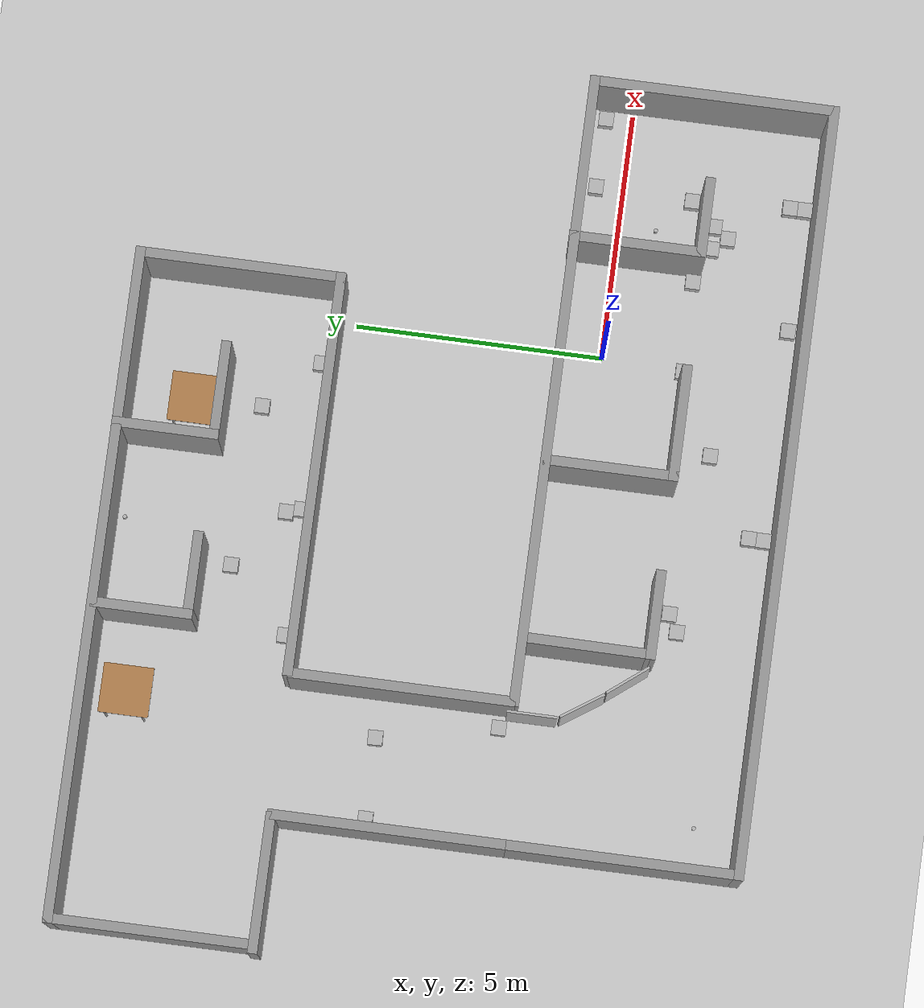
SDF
<sdf version="1.4">
 <world name="default">
  <physics type="ode">
   <gravity>0 0 -9.81</gravity>
   <ode>
    <solver><type>quick</type><iters>20</iters><sor>1</sor></solver>
    <constraints>
     <cfm>0</cfm>
     <erp>0.2</erp>
     <contact_max_correcting_vel>100</contact_max_correcting_vel>
     <contact_surface_layer>0</contact_surface_layer>
    </constraints>
   </ode>
   <real_time_update_rate>1000</real_time_update_rate>
   <max_step_size>0.001</max_step_size>
   <real_time_factor>1</real_time_factor>
  </physics>
  <light name="light1" type="directional">
   <pose>-2 0 4 0 -0 0</pose>
   <diffuse>1 1 1 1</diffuse>
   <specular>0.1 0.1 0.1 1</specular>
   <attenuation>
    <range>20</range>
    <constant>0.9</constant>
    <linear>0.01</linear>
    <quadratic>0.001</quadratic>
   </attenuation>
   <direction>0.2 0 -1</direction>
  </light>
  <model name="ground_plane">
   <static>1</static>
   <link name="link">
    <collision name="collision">
     <geometry><plane><normal>0 0 1</normal><size>100 100</size></plane></geometry>
     <surface><friction><ode><mu>100</mu><mu2>50</mu2></ode></friction></surface>
    </collision>
    <visual name="visual">
     <cast_shadows>0</cast_shadows>
     <geometry><plane><normal>0 0 1</normal><size>100 100</size></plane></geometry>
     <material>
      <script><uri>file://media/materials/scripts/gazebo.material</uri><name>Gazebo/Grey</name></script>
     </material>
    </visual>
    <velocity_decay><linear>0</linear><angular>0</angular></velocity_decay>
   </link>
  </model>
  <model name="building4">
   <pose>0.0604 0.08053 0 0 -0 0</pose>
   <link name="Wall_13">
    <collision name="Wall_13_Collision">
     <geometry><box><size>5.01 0.2 2.5</size></box></geometry>
     <pose>0 0 1.25 0 -0 0</pose>
    </collision>
    <visual name="Wall_13_Visual">
     <pose>0 0 1.25 0 -0 0</pose>
     <geometry><box><size>5.01 0.2 2.5</size></box></geometry>
     <material>
      <script><uri>file://media/materials/scripts/gazebo.material</uri><name>Gazebo/Grey</name></script>
     </material>
    </visual>
    <velocity_decay><linear>0</linear><angular>0</angular></velocity_decay>
    <pose>-10.233 -1.616 0 0 0 -1.5708</pose>
   </link>
   <link name="Wall_14">
    <collision name="Wall_14_Collision">
     <geometry><box><size>15.55 0.2 2.5</size></box></geometry>
     <pose>0 0 1.25 0 -0 0</pose>
    </collision>
    <visual name="Wall_14_Visual">
     <pose>0 0 1.25 0 -0 0</pose>
     <geometry><box><size>15.55 0.2 2.5</size></box></geometry>
     <material>
      <script><uri>file://media/materials/scripts/gazebo.material</uri><name>Gazebo/Grey</name></script>
     </material>
    </visual>
    <velocity_decay><linear>0</linear><angular>0</angular></velocity_decay>
    <pose>-2.55804 -4.02081 0 0 -0 2.5e-05</pose>
   </link>
   <link name="Wall_15">
    <collision name="Wall_15_Collision">
     <geometry><box><size>5.01 0.2 2.5</size></box></geometry>
     <pose>0 0 1.25 0 -0 0</pose>
    </collision>
    <visual name="Wall_15_Visual">
     <pose>0 0 1.25 0 -0 0</pose>
     <geometry><box><size>5.01 0.2 2.5</size></box></geometry>
     <material>
      <script><uri>file://media/materials/scripts/gazebo.material</uri><name>Gazebo/Grey</name></script>
     </material>
    </visual>
    <velocity_decay><linear>0</linear><angular>0</angular></velocity_decay>
    <pose>5.11693 -1.61562 0 0 -0 1.5708</pose>
   </link>
   <link name="Wall_16">
    <collision name="Wall_16_Collision">
     <geometry><box><size>12.72 0.2 2.5</size></box></geometry>
     <pose>0 0 1.25 0 -0 0</pose>
    </collision>
    <visual name="Wall_16_Visual">
     <pose>0 0 1.25 0 -0 0</pose>
     <geometry><box><size>12.72 0.2 2.5</size></box></geometry>
     <material>
      <script><uri>file://media/materials/scripts/gazebo.material</uri><name>Gazebo/Grey</name></script>
     </material>
    </visual>
    <velocity_decay><linear>0</linear><angular>0</angular></velocity_decay>
    <pose>-1.14308 0.789383 0 0 -0 3.14159</pose>
   </link>
   <link name="Wall_19">
    <collision name="Wall_19_Collision">
     <geometry><box><size>2.75243 0.2 2.5</size></box></geometry>
     <pose>0 0 1.25 0 -0 0</pose>
    </collision>
    <visual name="Wall_19_Visual">
     <pose>0 0 1.25 0 -0 0</pose>
     <geometry><box><size>2.75243 0.2 2.5</size></box></geometry>
     <material>
      <script><uri>file://media/materials/scripts/gazebo.material</uri><name>Gazebo/Grey</name></script>
     </material>
    </visual>
    <velocity_decay><linear>0</linear><angular>0</angular></velocity_decay>
    <pose>1.95298 -0.471453 0 0 0 -1.5708</pose>
   </link>
   <link name="Wall_20">
    <collision name="Wall_20_Collision">
     <geometry><box><size>1.61606 0.2 2.5</size></box></geometry>
     <pose>0 0 1.25 0 -0 0</pose>
    </collision>
    <visual name="Wall_20_Visual">
     <pose>0 0 1.25 0 -0 0</pose>
     <geometry><box><size>1.61606 0.2 2.5</size></box></geometry>
     <material>
      <script><uri>file://media/materials/scripts/gazebo.material</uri><name>Gazebo/Grey</name></script>
     </material>
    </visual>
    <velocity_decay><linear>0</linear><angular>0</angular></velocity_decay>
    <pose>2.66102 -1.74767 0 0 -0 0</pose>
   </link>
   <link name="Wall_22">
    <collision name="Wall_22_Collision">
     <geometry><box><size>2.69952 0.2 2.5</size></box></geometry>
     <pose>0 0 1.25 0 -0 0</pose>
    </collision>
    <visual name="Wall_22_Visual">
     <pose>0 0 1.25 0 -0 0</pose>
     <geometry><box><size>2.69952 0.2 2.5</size></box></geometry>
     <material>
      <script><uri>file://media/materials/scripts/gazebo.material</uri><name>Gazebo/Grey</name></script>
     </material>
    </visual>
    <velocity_decay><linear>0</linear><angular>0</angular></velocity_decay>
    <pose>-2.56997 -0.511128 0 0 0 -1.5708</pose>
   </link>
   <link name="Wall_23">
    <collision name="Wall_23_Collision">
     <geometry><box><size>2.34347 0.2 2.5</size></box></geometry>
     <pose>0 0 1.25 0 -0 0</pose>
    </collision>
    <visual name="Wall_23_Visual">
     <pose>0 0 1.25 0 -0 0</pose>
     <geometry><box><size>2.34347 0.2 2.5</size></box></geometry>
     <material>
      <script><uri>file://media/materials/scripts/gazebo.material</uri><name>Gazebo/Grey</name></script>
     </material>
    </visual>
    <velocity_decay><linear>0</linear><angular>0</angular></velocity_decay>
    <pose>-1.49823 -1.76089 0 0 -0 0</pose>
   </link>
   <link name="Wall_27">
    <collision name="Wall_27_Collision">
     <geometry><box><size>2.67304 0.2 2.5</size></box></geometry>
     <pose>0 0 1.25 0 -0 0</pose>
    </collision>
    <visual name="Wall_27_Visual">
     <pose>0 0 1.25 0 -0 0</pose>
     <geometry><box><size>2.67304 0.2 2.5</size></box></geometry>
     <material>
      <script><uri>file://media/materials/scripts/gazebo.material</uri><name>Gazebo/Grey</name></script>
     </material>
    </visual>
    <velocity_decay><linear>0</linear><angular>0</angular></velocity_decay>
    <pose>-6.134 -0.5245 0 0 0 -1.57646</pose>
   </link>
   <link name="Wall_28">
    <collision name="Wall_28_Collision">
     <geometry><box><size>1.78778 0.2 2.5</size></box></geometry>
     <pose>0 0 1.25 0 -0 0</pose>
    </collision>
    <visual name="Wall_28_Visual">
     <pose>0 0 1.25 0 -0 0</pose>
     <geometry><box><size>1.78778 0.2 2.5</size></box></geometry>
     <material>
      <script><uri>file://media/materials/scripts/gazebo.material</uri><name>Gazebo/Grey</name></script>
     </material>
    </visual>
    <velocity_decay><linear>0</linear><angular>0</angular></velocity_decay>
    <pose>-5.34711 -1.761 0 0 -0 0</pose>
   </link>
   <link name="Wall_30">
    <collision name="Wall_30_Collision">
     <geometry><box><size>4.722 0.2 2.5</size></box></geometry>
     <pose>0 0 1.25 0 -0 0</pose>
    </collision>
    <visual name="Wall_30_Visual">
     <pose>0 0 1.25 0 -0 0</pose>
     <geometry><box><size>4.722 0.2 2.5</size></box></geometry>
     <material>
      <script><uri>file://media/materials/scripts/gazebo.material</uri><name>Gazebo/Grey</name></script>
     </material>
    </visual>
    <velocity_decay><linear>0</linear><angular>0</angular></velocity_decay>
    <pose>-10.233 2.952 0 0 -0 1.5708</pose>
   </link>
   <link name="Wall_32">
    <collision name="Wall_32_Collision">
     <geometry><box><size>4.52699 0.2 2.5</size></box></geometry>
     <pose>0 0 1.25 0 -0 0</pose>
    </collision>
    <visual name="Wall_32_Visual">
     <pose>0 0 1.25 0 -0 0</pose>
     <geometry><box><size>4.52699 0.2 2.5</size></box></geometry>
     <material>
      <script><uri>file://media/materials/scripts/gazebo.material</uri><name>Gazebo/Grey</name></script>
     </material>
    </visual>
    <velocity_decay><linear>0</linear><angular>0</angular></velocity_decay>
    <pose>-7.41943 3.02427 0 0 -0 1.5708</pose>
   </link>
   <link name="Wall_35">
    <collision name="Wall_35_Collision">
     <geometry><box><size>2.80534 0.2 2.5</size></box></geometry>
     <pose>0 0 1.25 0 -0 0</pose>
    </collision>
    <visual name="Wall_35_Visual">
     <pose>0 0 1.25 0 -0 0</pose>
     <geometry><box><size>2.80534 0.2 2.5</size></box></geometry>
     <material>
      <script><uri>file://media/materials/scripts/gazebo.material</uri><name>Gazebo/Grey</name></script>
     </material>
    </visual>
    <velocity_decay><linear>0</linear><angular>0</angular></velocity_decay>
    <pose>-11.5868 5.23749 0 0 -0 3.14159</pose>
   </link>
   <link name="Wall_38">
    <collision name="Wall_38_Collision">
     <geometry><box><size>4.19003 0.2 2.5</size></box></geometry>
     <pose>0 0 1.25 0 -0 0</pose>
    </collision>
    <visual name="Wall_38_Visual">
     <pose>0 0 1.25 0 -0 0</pose>
     <geometry><box><size>4.19003 0.2 2.5</size></box></geometry>
     <material>
      <script><uri>file://media/materials/scripts/gazebo.material</uri><name>Gazebo/Grey</name></script>
     </material>
    </visual>
    <velocity_decay><linear>0</linear><angular>0</angular></velocity_decay>
    <pose>-12.8151 7.30342 0 0 -0 1.5708</pose>
   </link>
   <link name="Wall_39">
    <collision name="Wall_39_Collision">
     <geometry><box><size>13.5347 0.2 2.5</size></box></geometry>
     <pose>0 0 1.25 0 -0 0</pose>
    </collision>
    <visual name="Wall_39_Visual">
     <pose>0 0 1.25 0 -0 0</pose>
     <geometry><box><size>13.5347 0.2 2.5</size></box></geometry>
     <material>
      <script><uri>file://media/materials/scripts/gazebo.material</uri><name>Gazebo/Grey</name></script>
     </material>
    </visual>
    <velocity_decay><linear>0</linear><angular>0</angular></velocity_decay>
    <pose>-6.14777 9.29843 0 0 -0 0</pose>
   </link>
   <link name="Wall_40">
    <collision name="Wall_40_Collision">
     <geometry><box><size>4.21663 0.2 2.5</size></box></geometry>
     <pose>0 0 1.25 0 -0 0</pose>
    </collision>
    <visual name="Wall_40_Visual">
     <pose>0 0 1.25 0 -0 0</pose>
     <geometry><box><size>4.21663 0.2 2.5</size></box></geometry>
     <material>
      <script><uri>file://media/materials/scripts/gazebo.material</uri><name>Gazebo/Grey</name></script>
     </material>
    </visual>
    <velocity_decay><linear>0</linear><angular>0</angular></velocity_decay>
    <pose>0.51957 7.29012 0 0 0 -1.5708</pose>
   </link>
   <link name="Wall_41">
    <collision name="Wall_41_Collision">
     <geometry><box><size>8.1083 0.2 2.5</size></box></geometry>
     <pose>0 0 1.25 0 -0 0</pose>
    </collision>
    <visual name="Wall_41_Visual">
     <pose>0 0 1.25 0 -0 0</pose>
     <geometry><box><size>8.1083 0.2 2.5</size></box></geometry>
     <material>
      <script><uri>file://media/materials/scripts/gazebo.material</uri><name>Gazebo/Grey</name></script>
     </material>
    </visual>
    <velocity_decay><linear>0</linear><angular>0</angular></velocity_decay>
    <pose>-3.43455 5.2818 0 0 -0 3.14159</pose>
   </link>
   <link name="Wall_43">
    <collision name="Wall_43_Collision">
     <geometry><box><size>2.14297 0.2 2.5</size></box></geometry>
     <pose>0 0 1.25 0 -0 0</pose>
    </collision>
    <visual name="Wall_43_Visual">
     <pose>0 0 1.25 0 -0 0</pose>
     <geometry><box><size>2.14297 0.2 2.5</size></box></geometry>
     <material>
      <script><uri>file://media/materials/scripts/gazebo.material</uri><name>Gazebo/Grey</name></script>
     </material>
    </visual>
    <velocity_decay><linear>0</linear><angular>0</angular></velocity_decay>
    <pose>-2.91992 8.32953 0 0 0 -1.5708</pose>
   </link>
   <link name="Wall_44">
    <collision name="Wall_44_Collision">
     <geometry><box><size>1.98106 0.2 2.5</size></box></geometry>
     <pose>0 0 1.25 0 -0 0</pose>
    </collision>
    <visual name="Wall_44_Visual">
     <pose>0 0 1.25 0 -0 0</pose>
     <geometry><box><size>1.98106 0.2 2.5</size></box></geometry>
     <material>
      <script><uri>file://media/materials/scripts/gazebo.material</uri><name>Gazebo/Grey</name></script>
     </material>
    </visual>
    <velocity_decay><linear>0</linear><angular>0</angular></velocity_decay>
    <pose>-2.02939 7.35804 0 0 -0 0</pose>
   </link>
   <link name="Wall_54">
    <collision name="Wall_54_Collision">
     <geometry><box><size>2.03541 0.2 2.5</size></box></geometry>
     <pose>0 0 1.25 0 -0 0</pose>
    </collision>
    <visual name="Wall_54_Visual">
     <pose>0 0 1.25 0 -0 0</pose>
     <geometry><box><size>2.03541 0.2 2.5</size></box></geometry>
     <material>
      <script><uri>file://media/materials/scripts/gazebo.material</uri><name>Gazebo/Grey</name></script>
     </material>
    </visual>
    <velocity_decay><linear>0</linear><angular>0</angular></velocity_decay>
    <pose>-6.52977 8.31143 0 0 0 -1.5708</pose>
   </link>
   <link name="Wall_55">
    <collision name="Wall_55_Collision">
     <geometry><box><size>1.7601 0.2 2.5</size></box></geometry>
     <pose>0 0 1.25 0 -0 0</pose>
    </collision>
    <visual name="Wall_55_Visual">
     <pose>0 0 1.25 0 -0 0</pose>
     <geometry><box><size>1.7601 0.2 2.5</size></box></geometry>
     <material>
      <script><uri>file://media/materials/scripts/gazebo.material</uri><name>Gazebo/Grey</name></script>
     </material>
    </visual>
    <velocity_decay><linear>0</linear><angular>0</angular></velocity_decay>
    <pose>-5.74972 7.39373 0 0 -0 0</pose>
   </link>
   <static>1</static>
  </model>
  <scene><ambient>0.4 0.4 0.4 1</ambient><background>0.7 0.7 0.7 1</background><shadows>1</shadows></scene>
  <spherical_coordinates>
   <surface_model>EARTH_WGS84</surface_model>
   <latitude_deg>0</latitude_deg>
   <longitude_deg>0</longitude_deg>
   <elevation>0</elevation>
   <heading_deg>0</heading_deg>
  </spherical_coordinates>
  <model name="cocacola">
   <static>0</static>
   <link name="link">
    <inertial>
     <mass>0.25</mass>
     <inertia><ixx>0</ixx><ixy>0</ixy><ixz>0</ixz><iyy>0</iyy><iyz>0</iyz><izz>0</izz></inertia>
    </inertial>
    <collision name="collision">
     <pose>0 0 0.075 -3.14159 -0 0</pose>
     <geometry><cylinder><radius>0.04</radius><length>0.15</length></cylinder></geometry>
    </collision>
    <visual name="visual">
     <pose>0 0 0.075 -3.14159 -0 0</pose>
     <geometry><cylinder><radius>0.04</radius><length>0.15</length></cylinder></geometry>
     <material>
      <script>
       <uri>model://cocacola/material/scripts</uri>
       <uri>model://cocacola/material/textures</uri>
       <name>Custom/cocacola</name>
      </script>
     </material>
    </visual>
    <velocity_decay><linear>0</linear><angular>0</angular></velocity_decay>
   </link>
   <pose>2.68091 -0.744272 0.300009 9.6e-05 -0.000191 2.9e-05</pose>
  </model>
  <model name="cocacola_0">
   <static>0</static>
   <link name="link">
    <inertial>
     <mass>0.25</mass>
     <inertia><ixx>0</ixx><ixy>0</ixy><ixz>0</ixz><iyy>0</iyy><iyz>0</iyz><izz>0</izz></inertia>
    </inertial>
    <collision name="collision">
     <pose>0 0 0.075 -3.14159 -0 0</pose>
     <geometry><cylinder><radius>0.04</radius><length>0.15</length></cylinder></geometry>
    </collision>
    <visual name="visual">
     <pose>0 0 0.075 -3.14159 -0 0</pose>
     <geometry><cylinder><radius>0.04</radius><length>0.15</length></cylinder></geometry>
     <material>
      <script>
       <uri>model://cocacola/material/scripts</uri>
       <uri>model://cocacola/material/textures</uri>
       <name>Custom/cocacola</name>
      </script>
     </material>
    </visual>
    <velocity_decay><linear>0</linear><angular>0</angular></velocity_decay>
   </link>
   <pose>1 -0.177691 0.299999 2.9e-05 -0.000205 4e-06</pose>
  </model>
  <model name="cocacola_1">
   <static>0</static>
   <link name="link">
    <inertial>
     <mass>0.25</mass>
     <inertia><ixx>0</ixx><ixy>0</ixy><ixz>0</ixz><iyy>0</iyy><iyz>0</iyz><izz>0</izz></inertia>
    </inertial>
    <collision name="collision">
     <pose>0 0 0.075 -3.14159 -0 0</pose>
     <geometry><cylinder><radius>0.04</radius><length>0.15</length></cylinder></geometry>
    </collision>
    <visual name="visual">
     <pose>0 0 0.075 -3.14159 -0 0</pose>
     <geometry><cylinder><radius>0.04</radius><length>0.15</length></cylinder></geometry>
     <material>
      <script>
       <uri>model://cocacola/material/scripts</uri>
       <uri>model://cocacola/material/textures</uri>
       <name>Custom/cocacola</name>
      </script>
     </material>
    </visual>
    <velocity_decay><linear>0</linear><angular>0</angular></velocity_decay>
   </link>
   <pose>-9.25325 -3 0.660004 -0.000113 -0.00033 8e-06</pose>
  </model>
  <model name="table_1m">
   <static>1</static>
   <link name="link">
    <collision name="surface">
     <pose>0 0 1.01 0 -0 0</pose>
     <geometry><box><size>1 1.01 0.03</size></box></geometry>
    </collision>
    <visual name="visual1">
     <pose>0 0 1.01 0 -0 0</pose>
     <geometry><box><size>1 1.01 0.03</size></box></geometry>
     <material>
      <script><uri>file://media/materials/scripts/gazebo.material</uri><name>Gazebo/Wood</name></script>
     </material>
    </visual>
    <collision name="front_left_leg">
     <pose>0.48 0.38 0.5005 0 -0 0</pose>
     <geometry><cylinder><radius>0.02</radius><length>1.01</length></cylinder></geometry>
    </collision>
    <visual name="front_left_leg">
     <pose>0.48 0.38 0.5005 0 -0 0</pose>
     <geometry><cylinder><radius>0.02</radius><length>1.01</length></cylinder></geometry>
     <material>
      <script><uri>file://media/materials/scripts/gazebo.material</uri><name>Gazebo/Grey</name></script>
     </material>
    </visual>
    <collision name="front_right_leg">
     <pose>0.48 -0.38 0.5005 0 -0 0</pose>
     <geometry><cylinder><radius>0.02</radius><length>1.01</length></cylinder></geometry>
    </collision>
    <visual name="front_right_leg">
     <pose>0.48 -0.38 0.5005 0 -0 0</pose>
     <geometry><cylinder><radius>0.02</radius><length>1.01</length></cylinder></geometry>
     <material>
      <script><uri>file://media/materials/scripts/gazebo.material</uri><name>Gazebo/Grey</name></script>
     </material>
    </visual>
    <collision name="back_right_leg">
     <pose>-0.48 -0.38 0.5005 0 -0 0</pose>
     <geometry><cylinder><radius>0.02</radius><length>1.01</length></cylinder></geometry>
    </collision>
    <visual name="back_right_leg">
     <pose>-0.48 -0.38 0.5005 0 -0 0</pose>
     <geometry><cylinder><radius>0.02</radius><length>1.01</length></cylinder></geometry>
     <material>
      <script><uri>file://media/materials/scripts/gazebo.material</uri><name>Gazebo/Grey</name></script>
     </material>
    </visual>
    <collision name="back_left_leg">
     <pose>-0.48 0.38 0.5005 0 -0 0</pose>
     <geometry><cylinder><radius>0.02</radius><length>1.01</length></cylinder></geometry>
    </collision>
    <visual name="back_left_leg">
     <pose>-0.48 0.38 0.5005 0 -0 0</pose>
     <geometry><cylinder><radius>0.02</radius><length>1.01</length></cylinder></geometry>
     <material>
      <script><uri>file://media/materials/scripts/gazebo.material</uri><name>Gazebo/Grey</name></script>
     </material>
    </visual>
    <velocity_decay><linear>0</linear><angular>0</angular></velocity_decay>
   </link>
   <pose>-8 8.5652 0 0 -0 0</pose>
  </model>
  <model name="cocacola_3">
   <static>0</static>
   <link name="link">
    <inertial>
     <mass>0.25</mass>
     <inertia><ixx>0</ixx><ixy>0</ixy><ixz>0</ixz><iyy>0</iyy><iyz>0</iyz><izz>0</izz></inertia>
    </inertial>
    <collision name="collision">
     <pose>0 0 0.075 -3.14159 -0 0</pose>
     <geometry><cylinder><radius>0.04</radius><length>0.15</length></cylinder></geometry>
    </collision>
    <visual name="visual">
     <pose>0 0 0.075 -3.14159 -0 0</pose>
     <geometry><cylinder><radius>0.04</radius><length>0.15</length></cylinder></geometry>
     <material>
      <script>
       <uri>model://cocacola/material/scripts</uri>
       <uri>model://cocacola/material/textures</uri>
       <name>Custom/cocacola</name>
      </script>
     </material>
    </visual>
    <velocity_decay><linear>0</linear><angular>0</angular></velocity_decay>
   </link>
   <pose>-4.52272 9.0837 0.610009 2e-06 -0.000229 1.8e-05</pose>
  </model>
  <model name="table_1m_0">
   <static>1</static>
   <link name="link">
    <collision name="surface">
     <pose>0 0 1.01 0 -0 0</pose>
     <geometry><box><size>1 1.01 0.03</size></box></geometry>
    </collision>
    <visual name="visual1">
     <pose>0 0 1.01 0 -0 0</pose>
     <geometry><box><size>1 1.01 0.03</size></box></geometry>
     <material>
      <script><uri>file://media/materials/scripts/gazebo.material</uri><name>Gazebo/Wood</name></script>
     </material>
    </visual>
    <collision name="front_left_leg">
     <pose>0.48 0.38 0.5005 0 -0 0</pose>
     <geometry><cylinder><radius>0.02</radius><length>1.01</length></cylinder></geometry>
    </collision>
    <visual name="front_left_leg">
     <pose>0.48 0.38 0.5005 0 -0 0</pose>
     <geometry><cylinder><radius>0.02</radius><length>1.01</length></cylinder></geometry>
     <material>
      <script><uri>file://media/materials/scripts/gazebo.material</uri><name>Gazebo/Grey</name></script>
     </material>
    </visual>
    <collision name="front_right_leg">
     <pose>0.48 -0.38 0.5005 0 -0 0</pose>
     <geometry><cylinder><radius>0.02</radius><length>1.01</length></cylinder></geometry>
    </collision>
    <visual name="front_right_leg">
     <pose>0.48 -0.38 0.5005 0 -0 0</pose>
     <geometry><cylinder><radius>0.02</radius><length>1.01</length></cylinder></geometry>
     <material>
      <script><uri>file://media/materials/scripts/gazebo.material</uri><name>Gazebo/Grey</name></script>
     </material>
    </visual>
    <collision name="back_right_leg">
     <pose>-0.48 -0.38 0.5005 0 -0 0</pose>
     <geometry><cylinder><radius>0.02</radius><length>1.01</length></cylinder></geometry>
    </collision>
    <visual name="back_right_leg">
     <pose>-0.48 -0.38 0.5005 0 -0 0</pose>
     <geometry><cylinder><radius>0.02</radius><length>1.01</length></cylinder></geometry>
     <material>
      <script><uri>file://media/materials/scripts/gazebo.material</uri><name>Gazebo/Grey</name></script>
     </material>
    </visual>
    <collision name="back_left_leg">
     <pose>-0.48 0.38 0.5005 0 -0 0</pose>
     <geometry><cylinder><radius>0.02</radius><length>1.01</length></cylinder></geometry>
    </collision>
    <visual name="back_left_leg">
     <pose>-0.48 0.38 0.5005 0 -0 0</pose>
     <geometry><cylinder><radius>0.02</radius><length>1.01</length></cylinder></geometry>
     <material>
      <script><uri>file://media/materials/scripts/gazebo.material</uri><name>Gazebo/Grey</name></script>
     </material>
    </visual>
    <velocity_decay><linear>0</linear><angular>0</angular></velocity_decay>
   </link>
   <pose>-2 8 0 0 -0 0</pose>
  </model>
  <model name="box">
   <static>0</static>
   <link name="box">
    <pose>0 0 0.5 0 -0 0</pose>
    <collision name="collision"><geometry><box><size>0.3 0.3 0.3</size></box></geometry></collision>
    <visual name="visual">
     <geometry><box><size>0.3 0.3 0.3</size></box></geometry>
     <material>
      <script>
       <uri>model://box/material/scripts</uri>
       <uri>model://box/material/textures</uri>
       <name>Custom/box</name>
      </script>
     </material>
    </visual>
    <velocity_decay><linear>0</linear><angular>0</angular></velocity_decay>
    <inertial>
     <inertia><ixx>1</ixx><ixy>0</ixy><ixz>0</ixz><iyy>1</iyy><iyz>0</iyz><izz>1</izz></inertia>
     <mass>1</mass>
    </inertial>
   </link>
   <pose>-0.084765 -1.65647 -0.35 -1e-06 -0 2.4e-05</pose>
  </model>
  <model name="box_0">
   <static>0</static>
   <link name="box">
    <pose>0 0 0.5 0 -0 0</pose>
    <collision name="collision"><geometry><box><size>0.3 0.3 0.3</size></box></geometry></collision>
    <visual name="visual">
     <geometry><box><size>0.3 0.3 0.3</size></box></geometry>
     <material>
      <script>
       <uri>model://box/material/scripts</uri>
       <uri>model://box/material/textures</uri>
       <name>Custom/box</name>
      </script>
     </material>
    </visual>
    <velocity_decay><linear>0</linear><angular>0</angular></velocity_decay>
    <inertial>
     <inertia><ixx>1</ixx><ixy>0</ixy><ixz>0</ixz><iyy>1</iyy><iyz>0</iyz><izz>1</izz></inertia>
     <mass>1</mass>
    </inertial>
   </link>
   <pose>3.40518 -1.40484 -0.35 -1e-06 -0 -6e-06</pose>
  </model>
  <model name="box_1">
   <static>0</static>
   <link name="box">
    <pose>0 0 0.5 0 -0 0</pose>
    <collision name="collision"><geometry><box><size>0.3 0.3 0.3</size></box></geometry></collision>
    <visual name="visual">
     <geometry><box><size>0.3 0.3 0.3</size></box></geometry>
     <material>
      <script>
       <uri>model://box/material/scripts</uri>
       <uri>model://box/material/textures</uri>
       <name>Custom/box</name>
      </script>
     </material>
    </visual>
    <velocity_decay><linear>0</linear><angular>0</angular></velocity_decay>
    <inertial>
     <inertia><ixx>1</ixx><ixy>0</ixy><ixz>0</ixz><iyy>1</iyy><iyz>0</iyz><izz>1</izz></inertia>
     <mass>1</mass>
    </inertial>
   </link>
   <pose>3.45349 0.568203 -0.35 5.16988e-26 -2e-06 -0.00018</pose>
  </model>
  <model name="box_2">
   <static>0</static>
   <link name="box">
    <pose>0 0 0.5 0 -0 0</pose>
    <collision name="collision"><geometry><box><size>0.3 0.3 0.3</size></box></geometry></collision>
    <visual name="visual">
     <geometry><box><size>0.3 0.3 0.3</size></box></geometry>
     <material>
      <script>
       <uri>model://box/material/scripts</uri>
       <uri>model://box/material/textures</uri>
       <name>Custom/box</name>
      </script>
     </material>
    </visual>
    <velocity_decay><linear>0</linear><angular>0</angular></velocity_decay>
    <inertial>
     <inertia><ixx>1</ixx><ixy>0</ixy><ixz>0</ixz><iyy>1</iyy><iyz>0</iyz><izz>1</izz></inertia>
     <mass>1</mass>
    </inertial>
   </link>
   <pose>4.85744 0.53755 -0.349999 3e-06 1e-06 -4.2e-05</pose>
  </model>
  <model name="box_3">
   <static>0</static>
   <link name="box">
    <pose>0 0 0.5 0 -0 0</pose>
    <collision name="collision"><geometry><box><size>0.3 0.3 0.3</size></box></geometry></collision>
    <visual name="visual">
     <geometry><box><size>0.3 0.3 0.3</size></box></geometry>
     <material>
      <script>
       <uri>model://box/material/scripts</uri>
       <uri>model://box/material/textures</uri>
       <name>Custom/box</name>
      </script>
     </material>
    </visual>
    <velocity_decay><linear>0</linear><angular>0</angular></velocity_decay>
    <inertial>
     <inertia><ixx>1</ixx><ixy>0</ixy><ixz>0</ixz><iyy>1</iyy><iyz>0</iyz><izz>1</izz></inertia>
     <mass>1</mass>
    </inertial>
   </link>
   <pose>1.76308 -1.62442 -0.35 1e-06 1e-06 -0.001892</pose>
  </model>
  <model name="box_5">
   <static>0</static>
   <link name="box">
    <pose>0 0 0.5 0 -0 0</pose>
    <collision name="collision"><geometry><box><size>0.3 0.3 0.3</size></box></geometry></collision>
    <visual name="visual">
     <geometry><box><size>0.3 0.3 0.3</size></box></geometry>
     <material>
      <script>
       <uri>model://box/material/scripts</uri>
       <uri>model://box/material/textures</uri>
       <name>Custom/box</name>
      </script>
     </material>
    </visual>
    <velocity_decay><linear>0</linear><angular>0</angular></velocity_decay>
    <inertial>
     <inertia><ixx>1</ixx><ixy>0</ixy><ixz>0</ixz><iyy>1</iyy><iyz>0</iyz><izz>1</izz></inertia>
     <mass>1</mass>
    </inertial>
   </link>
   <pose>-4.99999 -2.00001 -0.349996 1.1e-05 -1.6e-05 9.7e-05</pose>
  </model>
  <model name="box_8">
   <static>0</static>
   <link name="box">
    <pose>0 0 0.5 0 -0 0</pose>
    <collision name="collision"><geometry><box><size>0.3 0.3 0.3</size></box></geometry></collision>
    <visual name="visual">
     <geometry><box><size>0.3 0.3 0.3</size></box></geometry>
     <material>
      <script>
       <uri>model://box/material/scripts</uri>
       <uri>model://box/material/textures</uri>
       <name>Custom/box</name>
      </script>
     </material>
    </visual>
    <velocity_decay><linear>0</linear><angular>0</angular></velocity_decay>
    <inertial>
     <inertia><ixx>1</ixx><ixy>0</ixy><ixz>0</ixz><iyy>1</iyy><iyz>0</iyz><izz>1</izz></inertia>
     <mass>1</mass>
    </inertial>
   </link>
   <pose>2.48617 -1.91721 -0.35 -1e-06 1e-06 0.000186</pose>
  </model>
  <model name="box_9">
   <static>0</static>
   <link name="box">
    <pose>0 0 0.5 0 -0 0</pose>
    <collision name="collision"><geometry><box><size>0.3 0.3 0.3</size></box></geometry></collision>
    <visual name="visual">
     <geometry><box><size>0.3 0.3 0.3</size></box></geometry>
     <material>
      <script>
       <uri>model://box/material/scripts</uri>
       <uri>model://box/material/textures</uri>
       <name>Custom/box</name>
      </script>
     </material>
    </visual>
    <velocity_decay><linear>0</linear><angular>0</angular></velocity_decay>
    <inertial>
     <inertia><ixx>1</ixx><ixy>0</ixy><ixz>0</ixz><iyy>1</iyy><iyz>0</iyz><izz>1</izz></inertia>
     <mass>1</mass>
    </inertial>
   </link>
   <pose>1.01487 -3.6544 -0.35 -1e-06 -1e-06 -0.000115</pose>
  </model>
  <model name="box_12">
   <static>0</static>
   <link name="box">
    <pose>0 0 0.5 0 -0 0</pose>
    <collision name="collision"><geometry><box><size>0.3 0.3 0.3</size></box></geometry></collision>
    <visual name="visual">
     <geometry><box><size>0.3 0.3 0.3</size></box></geometry>
     <material>
      <script>
       <uri>model://box/material/scripts</uri>
       <uri>model://box/material/textures</uri>
       <name>Custom/box</name>
      </script>
     </material>
    </visual>
    <velocity_decay><linear>0</linear><angular>0</angular></velocity_decay>
    <inertial>
     <inertia><ixx>1</ixx><ixy>0</ixy><ixz>0</ixz><iyy>1</iyy><iyz>0</iyz><izz>1</izz></inertia>
     <mass>1</mass>
    </inertial>
   </link>
   <pose>-9.87533 3.51912 -0.35 0 0 -3.1e-05</pose>
  </model>
  <model name="box_14">
   <static>0</static>
   <link name="box">
    <pose>0 0 0.5 0 -0 0</pose>
    <collision name="collision"><geometry><box><size>0.3 0.3 0.3</size></box></geometry></collision>
    <visual name="visual">
     <geometry><box><size>0.3 0.3 0.3</size></box></geometry>
     <material>
      <script>
       <uri>model://box/material/scripts</uri>
       <uri>model://box/material/textures</uri>
       <name>Custom/box</name>
      </script>
     </material>
    </visual>
    <velocity_decay><linear>0</linear><angular>0</angular></velocity_decay>
    <inertial>
     <inertia><ixx>1</ixx><ixy>0</ixy><ixz>0</ixz><iyy>1</iyy><iyz>0</iyz><izz>1</izz></inertia>
     <mass>1</mass>
    </inertial>
   </link>
   <pose>-3.86063 5.61235 -0.35 0 1e-06 0</pose>
  </model>
  <model name="box_16">
   <static>0</static>
   <link name="box">
    <pose>0 0 0.5 0 -0 0</pose>
    <collision name="collision"><geometry><box><size>0.3 0.3 0.3</size></box></geometry></collision>
    <visual name="visual">
     <geometry><box><size>0.3 0.3 0.3</size></box></geometry>
     <material>
      <script>
       <uri>model://box/material/scripts</uri>
       <uri>model://box/material/textures</uri>
       <name>Custom/box</name>
      </script>
     </material>
    </visual>
    <velocity_decay><linear>0</linear><angular>0</angular></velocity_decay>
    <inertial>
     <inertia><ixx>1</ixx><ixy>0</ixy><ixz>0</ixz><iyy>1</iyy><iyz>0</iyz><izz>1</izz></inertia>
     <mass>1</mass>
    </inertial>
   </link>
   <pose>-6.4312 5.61261 -0.35 -1e-06 -2e-06 -0.000399</pose>
  </model>
  <model name="box_7">
   <static>0</static>
   <link name="box">
    <pose>0 0 0.5 0 -0 0</pose>
    <collision name="collision"><geometry><box><size>0.3 0.3 0.3</size></box></geometry></collision>
    <visual name="visual">
     <geometry><box><size>0.3 0.3 0.3</size></box></geometry>
     <material>
      <script>
       <uri>model://box/material/scripts</uri>
       <uri>model://box/material/textures</uri>
       <name>Custom/box</name>
      </script>
     </material>
    </visual>
    <velocity_decay><linear>0</linear><angular>0</angular></velocity_decay>
    <inertial>
     <inertia><ixx>1</ixx><ixy>0</ixy><ixz>0</ixz><iyy>1</iyy><iyz>0</iyz><izz>1</izz></inertia>
     <mass>1</mass>
    </inertial>
   </link>
   <pose>-3.2886 -3.69028 -0.35 -1e-06 2e-06 0.000127</pose>
  </model>
  <model name="box_17">
   <static>0</static>
   <link name="box">
    <pose>0 0 0.5 0 -0 0</pose>
    <collision name="collision"><geometry><box><size>0.3 0.3 0.3</size></box></geometry></collision>
    <visual name="visual">
     <geometry><box><size>0.3 0.3 0.3</size></box></geometry>
     <material>
      <script>
       <uri>model://box/material/scripts</uri>
       <uri>model://box/material/textures</uri>
       <name>Custom/box</name>
      </script>
     </material>
    </visual>
    <velocity_decay><linear>0</linear><angular>0</angular></velocity_decay>
    <inertial>
     <inertia><ixx>1</ixx><ixy>0</ixy><ixz>0</ixz><iyy>1</iyy><iyz>0</iyz><izz>1</izz></inertia>
     <mass>1</mass>
    </inertial>
   </link>
   <pose>-5.15721 6.86982 -0.35 -1e-06 -5.16988e-26 -0.000382</pose>
  </model>
  <model name="box_18">
   <static>0</static>
   <link name="box">
    <pose>0 0 0.5 0 -0 0</pose>
    <collision name="collision"><geometry><box><size>0.3 0.3 0.3</size></box></geometry></collision>
    <visual name="visual">
     <geometry><box><size>0.3 0.3 0.3</size></box></geometry>
     <material>
      <script>
       <uri>model://box/material/scripts</uri>
       <uri>model://box/material/textures</uri>
       <name>Custom/box</name>
      </script>
     </material>
    </visual>
    <velocity_decay><linear>0</linear><angular>0</angular></velocity_decay>
    <inertial>
     <inertia><ixx>1</ixx><ixy>0</ixy><ixz>0</ixz><iyy>1</iyy><iyz>0</iyz><izz>1</izz></inertia>
     <mass>1</mass>
    </inertial>
   </link>
   <pose>-8.2403 3.53323 -0.35 2e-06 -0 0.02559</pose>
  </model>
  <model name="box_10">
   <static>0</static>
   <link name="box">
    <pose>0 0 0.5 0 -0 0</pose>
    <collision name="collision"><geometry><box><size>0.3 0.3 0.3</size></box></geometry></collision>
    <visual name="visual">
     <geometry><box><size>0.3 0.3 0.3</size></box></geometry>
     <material>
      <script>
       <uri>model://box/material/scripts</uri>
       <uri>model://box/material/textures</uri>
       <name>Custom/box</name>
      </script>
     </material>
    </visual>
    <velocity_decay><linear>0</linear><angular>0</angular></velocity_decay>
    <inertial>
     <inertia><ixx>1</ixx><ixy>0</ixy><ixz>0</ixz><iyy>1</iyy><iyz>0</iyz><izz>1</izz></inertia>
     <mass>1</mass>
    </inertial>
   </link>
   <pose>-7.72173 1.10559 -0.349999 7e-06 1e-06 -0.000465</pose>
  </model>
  <model name="box_4">
   <static>0</static>
   <link name="box">
    <pose>0 0 0.5 0 -0 0</pose>
    <collision name="collision"><geometry><box><size>0.3 0.3 0.3</size></box></geometry></collision>
    <visual name="visual">
     <geometry><box><size>0.3 0.3 0.3</size></box></geometry>
     <material>
      <script>
       <uri>model://box/material/scripts</uri>
       <uri>model://box/material/textures</uri>
       <name>Custom/box</name>
      </script>
     </material>
    </visual>
    <velocity_decay><linear>0</linear><angular>0</angular></velocity_decay>
    <inertial>
     <inertia><ixx>1</ixx><ixy>0</ixy><ixz>0</ixz><iyy>1</iyy><iyz>0</iyz><izz>1</izz></inertia>
     <mass>1</mass>
    </inertial>
   </link>
   <pose>-1.87825 6.67614 -0.35 1e-06 1e-06 -0.000139</pose>
  </model>
  <model name="box_11">
   <static>0</static>
   <link name="box">
    <pose>0 0 0.5 0 -0 0</pose>
    <collision name="collision"><geometry><box><size>0.3 0.3 0.3</size></box></geometry></collision>
    <visual name="visual">
     <geometry><box><size>0.3 0.3 0.3</size></box></geometry>
     <material>
      <script>
       <uri>model://box/material/scripts</uri>
       <uri>model://box/material/textures</uri>
       <name>Custom/box</name>
      </script>
     </material>
    </visual>
    <velocity_decay><linear>0</linear><angular>0</angular></velocity_decay>
    <inertial>
     <inertia><ixx>1</ixx><ixy>0</ixy><ixz>0</ixz><iyy>1</iyy><iyz>0</iyz><izz>1</izz></inertia>
     <mass>1</mass>
    </inertial>
   </link>
   <pose>2.73141 -2.21725 -0.35 1e-06 -1e-06 0.000599</pose>
  </model>
  <model name="box_13">
   <static>0</static>
   <link name="box">
    <pose>0 0 0.5 0 -0 0</pose>
    <collision name="collision"><geometry><box><size>0.3 0.3 0.3</size></box></geometry></collision>
    <visual name="visual">
     <geometry><box><size>0.3 0.3 0.3</size></box></geometry>
     <material>
      <script>
       <uri>model://box/material/scripts</uri>
       <uri>model://box/material/textures</uri>
       <name>Custom/box</name>
      </script>
     </material>
    </visual>
    <velocity_decay><linear>0</linear><angular>0</angular></velocity_decay>
    <inertial>
     <inertia><ixx>1</ixx><ixy>0</ixy><ixz>0</ixz><iyy>1</iyy><iyz>0</iyz><izz>1</izz></inertia>
     <mass>1</mass>
    </inertial>
   </link>
   <pose>3.51819 -3.6901 -0.35 1e-06 -1e-06 7.6e-05</pose>
  </model>
  <model name="box_19">
   <static>0</static>
   <link name="box">
    <pose>0 0 0.5 0 -0 0</pose>
    <collision name="collision"><geometry><box><size>0.3 0.3 0.3</size></box></geometry></collision>
    <visual name="visual">
     <geometry><box><size>0.3 0.3 0.3</size></box></geometry>
     <material>
      <script>
       <uri>model://box/material/scripts</uri>
       <uri>model://box/material/textures</uri>
       <name>Custom/box</name>
      </script>
     </material>
    </visual>
    <velocity_decay><linear>0</linear><angular>0</angular></velocity_decay>
    <inertial>
     <inertia><ixx>1</ixx><ixy>0</ixy><ixz>0</ixz><iyy>1</iyy><iyz>0</iyz><izz>1</izz></inertia>
     <mass>1</mass>
    </inertial>
   </link>
   <pose>3.51856 -3.38997 -0.349998 6e-06 -5e-06 0.000792</pose>
  </model>
  <model name="box_6">
   <static>0</static>
   <link name="box">
    <pose>0 0 0.5 0 -0 0</pose>
    <collision name="collision"><geometry><box><size>0.3 0.3 0.3</size></box></geometry></collision>
    <visual name="visual">
     <geometry><box><size>0.3 0.3 0.3</size></box></geometry>
     <material>
      <script>
       <uri>model://box/material/scripts</uri>
       <uri>model://box/material/textures</uri>
       <name>Custom/box</name>
      </script>
     </material>
    </visual>
    <velocity_decay><linear>0</linear><angular>0</angular></velocity_decay>
    <inertial>
     <inertia><ixx>1</ixx><ixy>0</ixy><ixz>0</ixz><iyy>1</iyy><iyz>0</iyz><izz>1</izz></inertia>
     <mass>1</mass>
    </inertial>
   </link>
   <pose>-1.71728 -2.41301 -0.35 0 -0 0.000119</pose>
  </model>
  <model name="box_21">
   <static>0</static>
   <link name="box">
    <pose>0 0 0.5 0 -0 0</pose>
    <collision name="collision"><geometry><box><size>0.3 0.3 0.3</size></box></geometry></collision>
    <visual name="visual">
     <geometry><box><size>0.3 0.3 0.3</size></box></geometry>
     <material>
      <script>
       <uri>model://box/material/scripts</uri>
       <uri>model://box/material/textures</uri>
       <name>Custom/box</name>
      </script>
     </material>
    </visual>
    <velocity_decay><linear>0</linear><angular>0</angular></velocity_decay>
    <inertial>
     <inertia><ixx>1</ixx><ixy>0</ixy><ixz>0</ixz><iyy>1</iyy><iyz>0</iyz><izz>1</izz></inertia>
     <mass>1</mass>
    </inertial>
   </link>
   <pose>-0.864691 5.61233 -0.35 -1e-06 1e-06 -7e-06</pose>
  </model>
  <model name="box_15">
   <static>0</static>
   <link name="box">
    <pose>0 0 0.5 0 -0 0</pose>
    <collision name="collision"><geometry><box><size>0.3 0.3 0.3</size></box></geometry></collision>
    <visual name="visual">
     <geometry><box><size>0.3 0.3 0.3</size></box></geometry>
     <material>
      <script>
       <uri>model://box/material/scripts</uri>
       <uri>model://box/material/textures</uri>
       <name>Custom/box</name>
      </script>
     </material>
    </visual>
    <velocity_decay><linear>0</linear><angular>0</angular></velocity_decay>
    <inertial>
     <inertia><ixx>1</ixx><ixy>0</ixy><ixz>0</ixz><iyy>1</iyy><iyz>0</iyz><izz>1</izz></inertia>
     <mass>1</mass>
    </inertial>
   </link>
   <pose>-3.94756 5.9126 -0.35 1e-06 1e-06 0.001086</pose>
  </model>
  <model name="box_24">
   <static>0</static>
   <link name="box">
    <pose>0 0 0.5 0 -0 0</pose>
    <collision name="collision"><geometry><box><size>0.3 0.3 0.3</size></box></geometry></collision>
    <visual name="visual">
     <geometry><box><size>0.3 0.3 0.3</size></box></geometry>
     <material>
      <script>
       <uri>model://box/material/scripts</uri>
       <uri>model://box/material/textures</uri>
       <name>Custom/box</name>
      </script>
     </material>
    </visual>
    <velocity_decay><linear>0</linear><angular>0</angular></velocity_decay>
    <inertial>
     <inertia><ixx>1</ixx><ixy>0</ixy><ixz>0</ixz><iyy>1</iyy><iyz>0</iyz><izz>1</izz></inertia>
     <mass>1</mass>
    </inertial>
   </link>
   <pose>2.94593 -1.91715 -0.35 0 -1e-06 -2.4e-05</pose>
  </model>
  <model name="box_22">
   <static>0</static>
   <link name="box">
    <pose>0 0 0.5 0 -0 0</pose>
    <collision name="collision"><geometry><box><size>0.3 0.3 0.3</size></box></geometry></collision>
    <visual name="visual">
     <geometry><box><size>0.3 0.3 0.3</size></box></geometry>
     <material>
      <script>
       <uri>model://box/material/scripts</uri>
       <uri>model://box/material/textures</uri>
       <name>Custom/box</name>
      </script>
     </material>
    </visual>
    <velocity_decay><linear>0</linear><angular>0</angular></velocity_decay>
    <inertial>
     <inertia><ixx>1</ixx><ixy>0</ixy><ixz>0</ixz><iyy>1</iyy><iyz>0</iyz><izz>1</izz></inertia>
     <mass>1</mass>
    </inertial>
   </link>
   <pose>-5.34698 -2.19157 -0.35 0 0 -9e-06</pose>
  </model>
  <model name="table">
   <link name="wallWithREEMphoto_body">
    <inertial>
     <mass>4</mass>
     <inertia><ixx>1</ixx><ixy>0</ixy><ixz>0</ixz><iyy>1</iyy><iyz>0</iyz><izz>1</izz></inertia>
    </inertial>
    <collision name="collision"><geometry><box><size>0.05 1 2</size></box></geometry></collision>
    <visual name="visual">
     <geometry><box><size>0.05 1 2</size></box></geometry>
     <material>
      <script>
       <uri>model://wall_with_reem_photo/material/scripts</uri>
       <uri>model://wall_with_reem_photo/material/textures</uri>
       <name>Custom/REEM_photo0</name>
      </script>
     </material>
    </visual>
    <velocity_decay><linear>0</linear><angular>0</angular></velocity_decay>
   </link>
   <pose>-6.59515 -1.30835 0.999999 -2e-06 -2.11758e-22 0.663938</pose>
   <static>0</static>
  </model>
  <model name="table_0">
   <link name="wallWithREEMphoto_body">
    <inertial>
     <mass>4</mass>
     <inertia><ixx>1</ixx><ixy>0</ixy><ixz>0</ixz><iyy>1</iyy><iyz>0</iyz><izz>1</izz></inertia>
    </inertial>
    <collision name="collision"><geometry><box><size>0.05 1 2</size></box></geometry></collision>
    <visual name="visual">
     <geometry><box><size>0.05 1 2</size></box></geometry>
     <material>
      <script>
       <uri>model://wall_with_reem_photo/material/scripts</uri>
       <uri>model://wall_with_reem_photo/material/textures</uri>
       <name>Custom/REEM_photo0</name>
      </script>
     </material>
    </visual>
    <velocity_decay><linear>0</linear><angular>0</angular></velocity_decay>
   </link>
   <pose>-7.21602 -0.479487 0.999999 -2e-06 -1e-06 0.593716</pose>
   <static>0</static>
  </model>
  <model name="table_1">
   <link name="wallWithREEMphoto_body">
    <inertial>
     <mass>4</mass>
     <inertia><ixx>1</ixx><ixy>0</ixy><ixz>0</ixz><iyy>1</iyy><iyz>0</iyz><izz>1</izz></inertia>
    </inertial>
    <collision name="collision"><geometry><box><size>0.05 1 2</size></box></geometry></collision>
    <visual name="visual">
     <geometry><box><size>0.05 1 2</size></box></geometry>
     <material>
      <script>
       <uri>model://wall_with_reem_photo/material/scripts</uri>
       <uri>model://wall_with_reem_photo/material/textures</uri>
       <name>Custom/REEM_photo0</name>
      </script>
     </material>
    </visual>
    <velocity_decay><linear>0</linear><angular>0</angular></velocity_decay>
   </link>
   <pose>-7.51539 0.487297 1.00003 -1e-06 0.001309 -1.1e-05</pose>
   <static>0</static>
  </model>
  <model name="box_23">
   <static>0</static>
   <link name="box">
    <pose>0 0 0.5 0 -0 0</pose>
    <collision name="collision"><geometry><box><size>0.3 0.3 0.3</size></box></geometry></collision>
    <visual name="visual">
     <geometry><box><size>0.3 0.3 0.3</size></box></geometry>
     <material>
      <script>
       <uri>model://box/material/scripts</uri>
       <uri>model://box/material/textures</uri>
       <name>Custom/box</name>
      </script>
     </material>
    </visual>
    <velocity_decay><linear>0</linear><angular>0</angular></velocity_decay>
    <inertial>
     <inertia><ixx>1</ixx><ixy>0</ixy><ixz>0</ixz><iyy>1</iyy><iyz>0</iyz><izz>1</izz></inertia>
     <mass>1</mass>
    </inertial>
   </link>
   <pose>-3.28193 -3.39004 -0.349996 -6e-06 2.3e-05 0.00124</pose>
  </model>
 </world>
</sdf>
